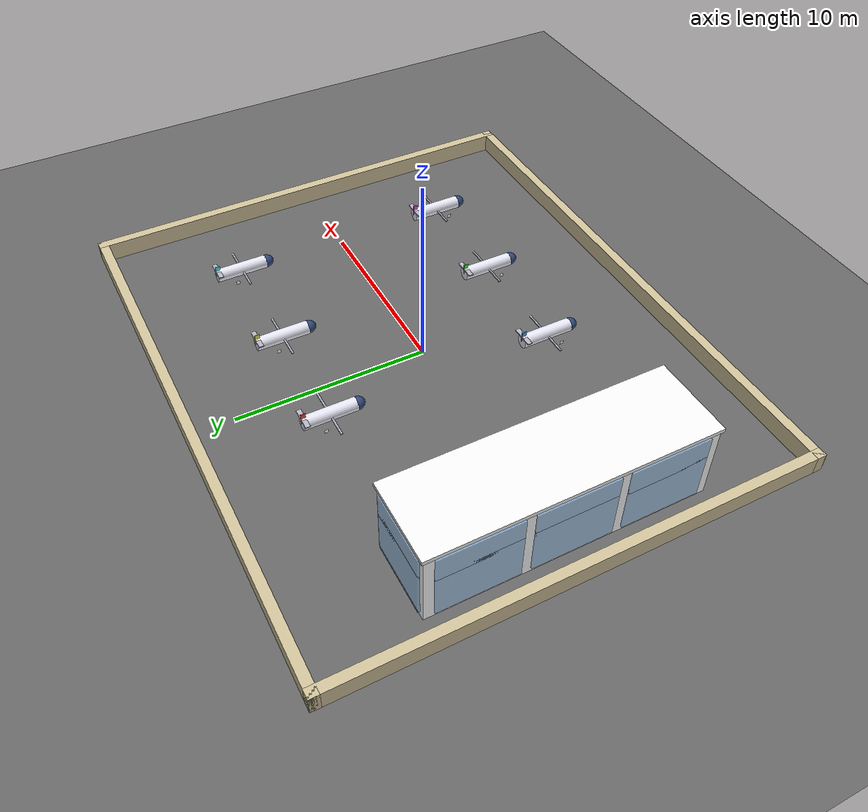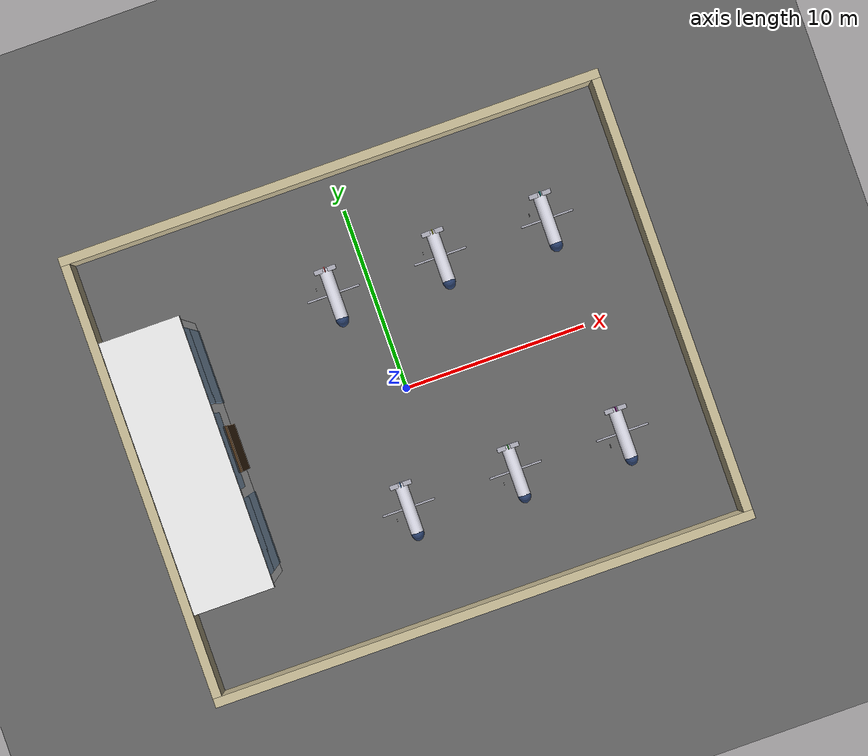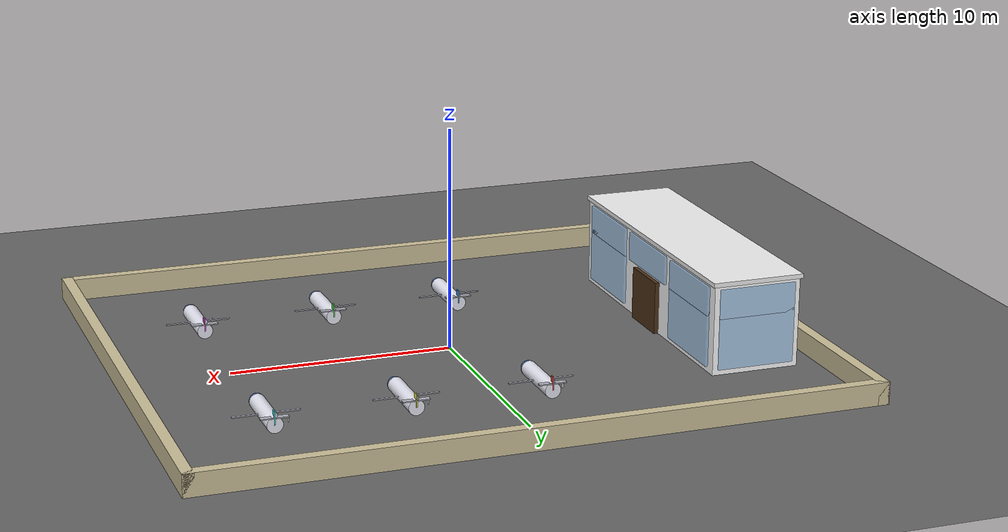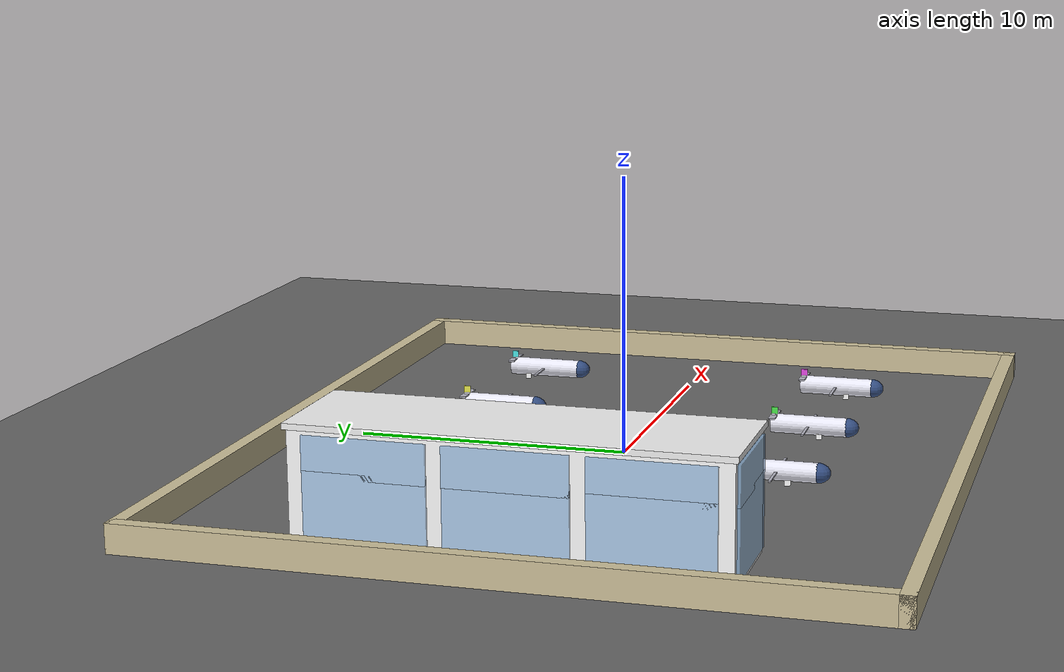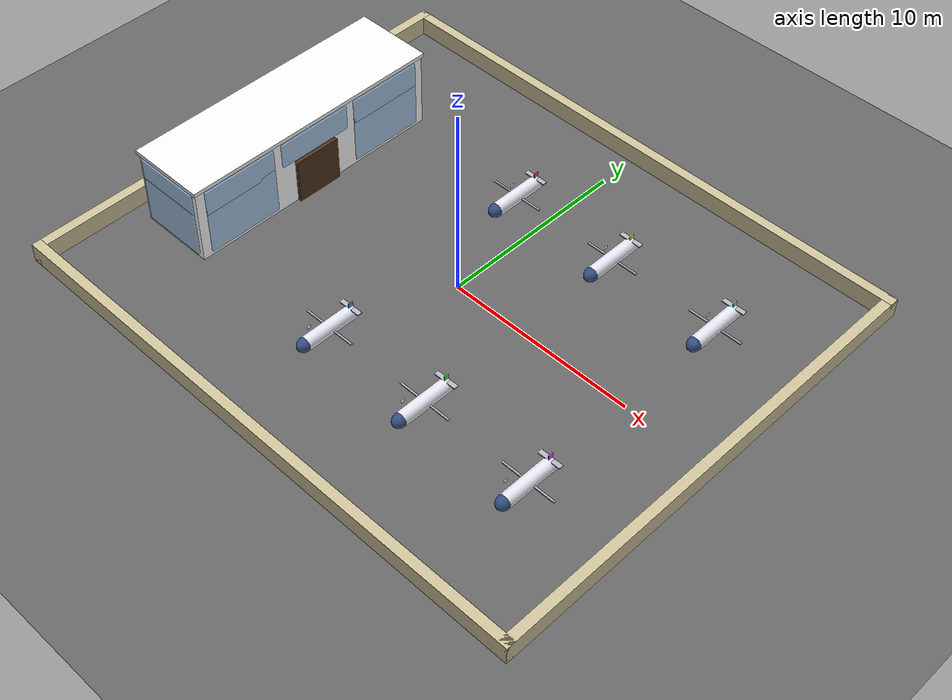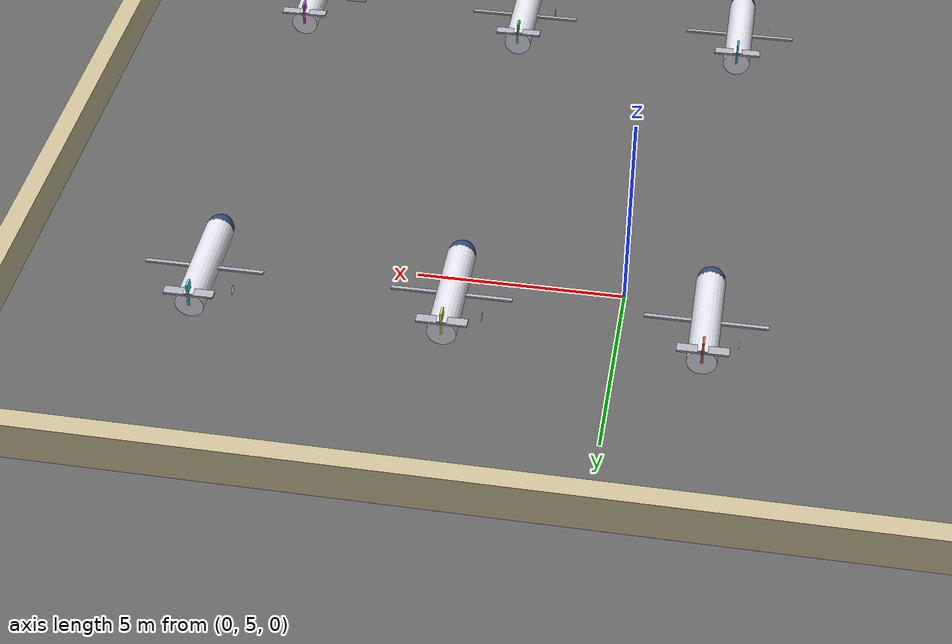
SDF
<sdf version="1.8">
 <world name="airport">
  <model name="ground_plane">
   <static>true</static>
   <link name="link">
    <collision name="collision">
     <geometry><plane><normal>0 0 1</normal><size>30 25</size></plane></geometry>
    </collision>
    <visual name="visual">
     <geometry><plane><normal>0 0 1</normal><size>30 25</size></plane></geometry>
     <material>
      <ambient>0.3 0.3 0.3 1</ambient>
      <diffuse>0.4 0.4 0.4 1</diffuse>
      <specular>0.01 0.01 0.01 1</specular>
     </material>
    </visual>
   </link>
  </model>
  <model name="airport_fence">
   <static>true</static>
   <link name="north_wall">
    <pose>0 12.25 0.5 0 0 0</pose>
    <collision name="collision"><geometry><box><size>30 0.5 1</size></box></geometry></collision>
    <visual name="visual">
     <geometry><box><size>30 0.5 1</size></box></geometry>
     <material>
      <ambient>0.8 0.75 0.6 1</ambient>
      <diffuse>0.8 0.75 0.6 1</diffuse>
      <specular>0.1 0.1 0.1 1</specular>
     </material>
    </visual>
   </link>
   <link name="south_wall">
    <pose>0 -12.25 0.5 0 0 0</pose>
    <collision name="collision"><geometry><box><size>30 0.5 1</size></box></geometry></collision>
    <visual name="visual">
     <geometry><box><size>30 0.5 1</size></box></geometry>
     <material>
      <ambient>0.8 0.75 0.6 1</ambient>
      <diffuse>0.8 0.75 0.6 1</diffuse>
      <specular>0.1 0.1 0.1 1</specular>
     </material>
    </visual>
   </link>
   <link name="east_wall">
    <pose>14.75 0 0.5 0 0 0</pose>
    <collision name="collision"><geometry><box><size>0.5 25 1</size></box></geometry></collision>
    <visual name="visual">
     <geometry><box><size>0.5 25 1</size></box></geometry>
     <material>
      <ambient>0.8 0.75 0.6 1</ambient>
      <diffuse>0.8 0.75 0.6 1</diffuse>
      <specular>0.1 0.1 0.1 1</specular>
     </material>
    </visual>
   </link>
   <link name="west_wall">
    <pose>-14.75 0 0.5 0 0 0</pose>
    <collision name="collision"><geometry><box><size>0.5 25 1</size></box></geometry></collision>
    <visual name="visual">
     <geometry><box><size>0.5 25 1</size></box></geometry>
     <material>
      <ambient>0.8 0.75 0.6 1</ambient>
      <diffuse>0.8 0.75 0.6 1</diffuse>
      <specular>0.1 0.1 0.1 1</specular>
     </material>
    </visual>
   </link>
  </model>
  <model name="terminal_building">
   <static>true</static>
   <pose>-10.5 0 0 0 0 0</pose>
   <link name="main_body">
    <pose>-1 0 2 0 0 0</pose>
    <collision name="collision"><geometry><box><size>4 14 4</size></box></geometry></collision>
    <visual name="visual">
     <geometry><box><size>4 14 4</size></box></geometry>
     <material><ambient>0.95 0.95 0.95 1</ambient><diffuse>1.0 1.0 1.0 1</diffuse></material>
    </visual>
   </link>
   <link name="roof">
    <pose>-1 0 4.1 0 0 0</pose>
    <visual name="visual">
     <geometry><box><size>4.2 14.2 0.2</size></box></geometry>
     <material><ambient>0.9 0.9 0.9 1</ambient><diffuse>0.95 0.95 0.95 1</diffuse></material>
    </visual>
   </link>
   <link name="entrance">
    <pose>1.1 0 1.2 0 0 0</pose>
    <visual name="visual">
     <geometry><box><size>0.2 2.5 2.4</size></box></geometry>
     <material><ambient>0.25 0.15 0.05 1</ambient><diffuse>0.3 0.2 0.1 1</diffuse></material>
    </visual>
   </link>
   <link name="window_front_1_left">
    <pose>1.05 -4.5 1.5 0 0 0</pose>
    <visual name="visual">
     <geometry><box><size>0.1 4 2.5</size></box></geometry>
     <material><ambient>0.4 0.6 0.85 0.5</ambient><diffuse>0.5 0.7 0.9 0.6</diffuse></material>
    </visual>
   </link>
   <link name="window_front_1_right">
    <pose>1.05 4.5 1.5 0 0 0</pose>
    <visual name="visual">
     <geometry><box><size>0.1 4 2.5</size></box></geometry>
     <material><ambient>0.4 0.6 0.85 0.5</ambient><diffuse>0.5 0.7 0.9 0.6</diffuse></material>
    </visual>
   </link>
   <link name="window_front_2_left">
    <pose>1.05 -4.5 3.2 0 0 0</pose>
    <visual name="visual">
     <geometry><box><size>0.1 4 1.3</size></box></geometry>
     <material><ambient>0.4 0.6 0.85 0.5</ambient><diffuse>0.5 0.7 0.9 0.6</diffuse></material>
    </visual>
   </link>
   <link name="window_front_2_central">
    <pose>1.05 -0.0 3.2 0 0 0</pose>
    <visual name="visual">
     <geometry><box><size>0.1 4 1.3</size></box></geometry>
     <material><ambient>0.4 0.6 0.85 0.5</ambient><diffuse>0.5 0.7 0.9 0.6</diffuse></material>
    </visual>
   </link>
   <link name="window_front_2_right">
    <pose>1.05 4.5 3.2 0 0 0</pose>
    <visual name="visual">
     <geometry><box><size>0.1 4 1.3</size></box></geometry>
     <material><ambient>0.4 0.6 0.85 0.5</ambient><diffuse>0.5 0.7 0.9 0.6</diffuse></material>
    </visual>
   </link>
   <link name="window_back_1_left">
    <pose>-3.05 -4.5 1.5 0 0 0</pose>
    <visual name="visual">
     <geometry><box><size>0.1 4 2.5</size></box></geometry>
     <material><ambient>0.4 0.6 0.85 0.5</ambient><diffuse>0.5 0.7 0.9 0.6</diffuse></material>
    </visual>
   </link>
   <link name="window_back_1_central">
    <pose>-3.05 -0.0 1.5 0 0 0</pose>
    <visual name="visual">
     <geometry><box><size>0.1 4 2.5</size></box></geometry>
     <material><ambient>0.4 0.6 0.85 0.5</ambient><diffuse>0.5 0.7 0.9 0.6</diffuse></material>
    </visual>
   </link>
   <link name="window_back_1_right">
    <pose>-3.05 4.5 1.5 0 0 0</pose>
    <visual name="visual">
     <geometry><box><size>0.1 4 2.5</size></box></geometry>
     <material><ambient>0.4 0.6 0.85 0.5</ambient><diffuse>0.5 0.7 0.9 0.6</diffuse></material>
    </visual>
   </link>
   <link name="window_back_2_left">
    <pose>-3.05 -4.5 3.2 0 0 0</pose>
    <visual name="visual">
     <geometry><box><size>0.1 4 1.3</size></box></geometry>
     <material><ambient>0.4 0.6 0.85 0.5</ambient><diffuse>0.5 0.7 0.9 0.6</diffuse></material>
    </visual>
   </link>
   <link name="window_back_2_central">
    <pose>-3.05 -0.0 3.2 0 0 0</pose>
    <visual name="visual">
     <geometry><box><size>0.1 4 1.3</size></box></geometry>
     <material><ambient>0.4 0.6 0.85 0.5</ambient><diffuse>0.5 0.7 0.9 0.6</diffuse></material>
    </visual>
   </link>
   <link name="window_back_2_right">
    <pose>-3.05 4.5 3.2 0 0 0</pose>
    <visual name="visual">
     <geometry><box><size>0.1 4 1.3</size></box></geometry>
     <material><ambient>0.4 0.6 0.85 0.5</ambient><diffuse>0.5 0.7 0.9 0.6</diffuse></material>
    </visual>
   </link>
   <link name="window_left_1">
    <pose>-1 -7.05 1.5 0 0 0</pose>
    <visual name="visual">
     <geometry><box><size>3.5 0.1 2.5</size></box></geometry>
     <material><ambient>0.4 0.6 0.85 0.5</ambient><diffuse>0.5 0.7 0.9 0.6</diffuse></material>
    </visual>
   </link>
   <link name="window_left_2">
    <pose>-1 -7.05 3.2 0 0 0</pose>
    <visual name="visual">
     <geometry><box><size>3.5 0.1 1.3</size></box></geometry>
     <material><ambient>0.4 0.6 0.85 0.5</ambient><diffuse>0.5 0.7 0.9 0.6</diffuse></material>
    </visual>
   </link>
   <link name="window_right_1">
    <pose>-1 7.05 1.5 0 0 0</pose>
    <visual name="visual">
     <geometry><box><size>3.5 0.1 2.5</size></box></geometry>
     <material><ambient>0.4 0.6 0.85 0.5</ambient><diffuse>0.5 0.7 0.9 0.6</diffuse></material>
    </visual>
   </link>
   <link name="window_right_2">
    <pose>-1 7.05 3.2 0 0 0</pose>
    <visual name="visual">
     <geometry><box><size>3.5 0.1 1.3</size></box></geometry>
     <material><ambient>0.4 0.6 0.85 0.5</ambient><diffuse>0.5 0.7 0.9 0.6</diffuse></material>
    </visual>
   </link>
  </model>
  <include>
   <uri>model://aruco_tag_1</uri>
   <name>aruco_tag_1</name>
   <pose>-2.8 -6.5 0.2 1.5708 0 -1.5708</pose>
   <static>true</static>
  </include>
  <include>
   <uri>model://aruco_tag_2</uri>
   <name>aruco_tag_2</name>
   <pose>-2.8 6.5 0.2 1.5708 0 -1.5708</pose>
   <static>true</static>
  </include>
  <include>
   <uri>model://aruco_tag_3</uri>
   <name>aruco_tag_3</name>
   <pose>3.2 -6.5 0.2 1.5708 0 -1.5708</pose>
   <static>true</static>
  </include>
  <include>
   <uri>model://aruco_tag_4</uri>
   <name>aruco_tag_4</name>
   <pose>3.2 6.5 0.2 1.5708 0 -1.5708</pose>
   <static>true</static>
  </include>
  <include>
   <uri>model://aruco_tag_5</uri>
   <name>aruco_tag_5</name>
   <pose>9.2 -6.5 0.2 1.5708 0 -1.5708</pose>
   <static>true</static>
  </include>
  <include>
   <uri>model://aruco_tag_6</uri>
   <name>aruco_tag_6</name>
   <pose>9.2 6.5 0.2 1.5708 0 -1.5708</pose>
   <static>true</static>
  </include>
  <model name="aereo_1">
   <static>true</static>
   <pose>-2 -6 0.4 0 0 0</pose>
   <link name="collision_box">
    <collision name="collision"><geometry><box><size>1.5 3.5 0.8</size></box></geometry></collision>
   </link>
   <link name="fuselage">
    <pose>0 0 0 1.5708 0 0</pose>
    <visual name="visual">
     <geometry><cylinder><radius>0.35</radius><length>2.8</length></cylinder></geometry>
     <material><ambient>0.85 0.85 0.9 1</ambient><diffuse>0.9 0.9 0.95 1</diffuse></material>
    </visual>
   </link>
   <link name="wing_left">
    <pose>-0.8 0 0 0 0 0</pose>
    <visual name="visual">
     <geometry><box><size>1.3 0.1 0.05</size></box></geometry>
     <material><ambient>0.65 0.65 0.7 1</ambient><diffuse>0.7 0.7 0.75 1</diffuse></material>
    </visual>
   </link>
   <link name="wing_right">
    <pose>0.8 0 0 0 0 0</pose>
    <visual name="visual">
     <geometry><box><size>1.3 0.1 0.05</size></box></geometry>
     <material><ambient>0.65 0.65 0.7 1</ambient><diffuse>0.7 0.7 0.75 1</diffuse></material>
    </visual>
   </link>
   <link name="vertical_stabilizer">
    <pose>0 1.3 0.3 0 0 0</pose>
    <visual name="visual">
     <geometry><box><size>0.05 0.25 0.6</size></box></geometry>
     <material><ambient>0.2 0.5 0.8 1</ambient><diffuse>0.3 0.6 0.9 1</diffuse></material>
    </visual>
   </link>
   <link name="horizontal_stabilizer_left">
    <pose>-0.3 1.3 0.3 0 0 0</pose>
    <visual name="visual">
     <geometry><box><size>0.6 0.25 0.05</size></box></geometry>
     <material><ambient>0.65 0.65 0.7 1</ambient><diffuse>0.7 0.7 0.75 1</diffuse></material>
    </visual>
   </link>
   <link name="horizontal_stabilizer_right">
    <pose>0.3 1.3 0.3 0 0 0</pose>
    <visual name="visual">
     <geometry><box><size>0.6 0.25 0.05</size></box></geometry>
     <material><ambient>0.65 0.65 0.7 1</ambient><diffuse>0.7 0.7 0.75 1</diffuse></material>
    </visual>
   </link>
   <link name="cockpit">
    <pose>0 -1.4 0 0 0 0</pose>
    <visual name="visual">
     <geometry><ellipsoid><radii>0.35 0.45 0.35</radii></ellipsoid></geometry>
     <material><ambient>0.1 0.2 0.4 0.8</ambient><diffuse>0.2 0.3 0.5 0.9</diffuse></material>
    </visual>
   </link>
  </model>
  <model name="aereo_2">
   <static>true</static>
   <pose>-2 6 0.4 0 0 0</pose>
   <link name="collision_box">
    <collision name="collision"><geometry><box><size>1.5 3.5 0.8</size></box></geometry></collision>
   </link>
   <link name="fuselage">
    <pose>0 0 0 1.5708 0 0</pose>
    <visual name="visual">
     <geometry><cylinder><radius>0.35</radius><length>2.8</length></cylinder></geometry>
     <material><ambient>0.85 0.85 0.9 1</ambient><diffuse>0.9 0.9 0.95 1</diffuse></material>
    </visual>
   </link>
   <link name="wing_left">
    <pose>-0.8 0 0 0 0 0</pose>
    <visual name="visual">
     <geometry><box><size>1.3 0.1 0.05</size></box></geometry>
     <material><ambient>0.65 0.65 0.7 1</ambient><diffuse>0.7 0.7 0.75 1</diffuse></material>
    </visual>
   </link>
   <link name="wing_right">
    <pose>0.8 0 0 0 0 0</pose>
    <visual name="visual">
     <geometry><box><size>1.3 0.1 0.05</size></box></geometry>
     <material><ambient>0.65 0.65 0.7 1</ambient><diffuse>0.7 0.7 0.75 1</diffuse></material>
    </visual>
   </link>
   <link name="vertical_stabilizer">
    <pose>0 1.3 0.3 0 0 0</pose>
    <visual name="visual">
     <geometry><box><size>0.05 0.25 0.6</size></box></geometry>
     <material><ambient>0.8 0.2 0.2 1</ambient><diffuse>0.9 0.3 0.3 1</diffuse></material>
    </visual>
   </link>
   <link name="horizontal_stabilizer_left">
    <pose>-0.3 1.3 0.3 0 0 0</pose>
    <visual name="visual">
     <geometry><box><size>0.6 0.25 0.05</size></box></geometry>
     <material><ambient>0.65 0.65 0.7 1</ambient><diffuse>0.7 0.7 0.75 1</diffuse></material>
    </visual>
   </link>
   <link name="horizontal_stabilizer_right">
    <pose>0.3 1.3 0.3 0 0 0</pose>
    <visual name="visual">
     <geometry><box><size>0.6 0.25 0.05</size></box></geometry>
     <material><ambient>0.65 0.65 0.7 1</ambient><diffuse>0.7 0.7 0.75 1</diffuse></material>
    </visual>
   </link>
   <link name="cockpit">
    <pose>0 -1.4 0 0 0 0</pose>
    <visual name="visual">
     <geometry><ellipsoid><radii>0.35 0.45 0.35</radii></ellipsoid></geometry>
     <material><ambient>0.1 0.2 0.4 0.8</ambient><diffuse>0.2 0.3 0.5 0.9</diffuse></material>
    </visual>
   </link>
  </model>
  <model name="aereo_3">
   <static>true</static>
   <pose>4 6 0.4 0 0 0</pose>
   <link name="collision_box">
    <collision name="collision"><geometry><box><size>1.5 3.5 0.8</size></box></geometry></collision>
   </link>
   <link name="fuselage">
    <pose>0 0 0 1.5708 0 0</pose>
    <visual name="visual">
     <geometry><cylinder><radius>0.35</radius><length>2.8</length></cylinder></geometry>
     <material><ambient>0.85 0.85 0.9 1</ambient><diffuse>0.9 0.9 0.95 1</diffuse></material>
    </visual>
   </link>
   <link name="wing_left">
    <pose>-0.8 0 0 0 0 0</pose>
    <visual name="visual">
     <geometry><box><size>1.3 0.1 0.05</size></box></geometry>
     <material><ambient>0.65 0.65 0.7 1</ambient><diffuse>0.7 0.7 0.75 1</diffuse></material>
    </visual>
   </link>
   <link name="wing_right">
    <pose>0.8 0 0 0 0 0</pose>
    <visual name="visual">
     <geometry><box><size>1.3 0.1 0.05</size></box></geometry>
     <material><ambient>0.65 0.65 0.7 1</ambient><diffuse>0.7 0.7 0.75 1</diffuse></material>
    </visual>
   </link>
   <link name="vertical_stabilizer">
    <pose>0 1.3 0.3 0 0 0</pose>
    <visual name="visual">
     <geometry><box><size>0.05 0.25 0.6</size></box></geometry>
     <material><ambient>0.8 0.8 0.2 1</ambient><diffuse>0.9 0.9 0.3 1</diffuse></material>
    </visual>
   </link>
   <link name="horizontal_stabilizer_left">
    <pose>-0.3 1.3 0.3 0 0 0</pose>
    <visual name="visual">
     <geometry><box><size>0.6 0.25 0.05</size></box></geometry>
     <material><ambient>0.65 0.65 0.7 1</ambient><diffuse>0.7 0.7 0.75 1</diffuse></material>
    </visual>
   </link>
   <link name="horizontal_stabilizer_right">
    <pose>0.3 1.3 0.3 0 0 0</pose>
    <visual name="visual">
     <geometry><box><size>0.6 0.25 0.05</size></box></geometry>
     <material><ambient>0.65 0.65 0.7 1</ambient><diffuse>0.7 0.7 0.75 1</diffuse></material>
    </visual>
   </link>
   <link name="cockpit">
    <pose>0 -1.4 0 0 0 0</pose>
    <visual name="visual">
     <geometry><ellipsoid><radii>0.35 0.45 0.35</radii></ellipsoid></geometry>
     <material><ambient>0.1 0.2 0.4 0.8</ambient><diffuse>0.2 0.3 0.5 0.9</diffuse></material>
    </visual>
   </link>
  </model>
  <model name="aereo_4">
   <static>true</static>
   <pose>4 -6 0.4 0 0 0</pose>
   <link name="collision_box">
    <collision name="collision"><geometry><box><size>1.5 3.5 0.8</size></box></geometry></collision>
   </link>
   <link name="fuselage">
    <pose>0 0 0 1.5708 0 0</pose>
    <visual name="visual">
     <geometry><cylinder><radius>0.35</radius><length>2.8</length></cylinder></geometry>
     <material><ambient>0.85 0.85 0.9 1</ambient><diffuse>0.9 0.9 0.95 1</diffuse></material>
    </visual>
   </link>
   <link name="wing_left">
    <pose>-0.8 0 0 0 0 0</pose>
    <visual name="visual">
     <geometry><box><size>1.3 0.1 0.05</size></box></geometry>
     <material><ambient>0.65 0.65 0.7 1</ambient><diffuse>0.7 0.7 0.75 1</diffuse></material>
    </visual>
   </link>
   <link name="wing_right">
    <pose>0.8 0 0 0 0 0</pose>
    <visual name="visual">
     <geometry><box><size>1.3 0.1 0.05</size></box></geometry>
     <material><ambient>0.65 0.65 0.7 1</ambient><diffuse>0.7 0.7 0.75 1</diffuse></material>
    </visual>
   </link>
   <link name="vertical_stabilizer">
    <pose>0 1.3 0.3 0 0 0</pose>
    <visual name="visual">
     <geometry><box><size>0.05 0.25 0.6</size></box></geometry>
     <material><ambient>0.2 0.8 0.2 1</ambient><diffuse>0.3 0.9 0.3 1</diffuse></material>
    </visual>
   </link>
   <link name="horizontal_stabilizer_left">
    <pose>-0.3 1.3 0.3 0 0 0</pose>
    <visual name="visual">
     <geometry><box><size>0.6 0.25 0.05</size></box></geometry>
     <material><ambient>0.65 0.65 0.7 1</ambient><diffuse>0.7 0.7 0.75 1</diffuse></material>
    </visual>
   </link>
   <link name="horizontal_stabilizer_right">
    <pose>0.3 1.3 0.3 0 0 0</pose>
    <visual name="visual">
     <geometry><box><size>0.6 0.25 0.05</size></box></geometry>
     <material><ambient>0.65 0.65 0.7 1</ambient><diffuse>0.7 0.7 0.75 1</diffuse></material>
    </visual>
   </link>
   <link name="cockpit">
    <pose>0 -1.4 0 0 0 0</pose>
    <visual name="visual">
     <geometry><ellipsoid><radii>0.35 0.45 0.35</radii></ellipsoid></geometry>
     <material><ambient>0.1 0.2 0.4 0.8</ambient><diffuse>0.2 0.3 0.5 0.9</diffuse></material>
    </visual>
   </link>
  </model>
  <model name="aereo_5">
   <static>true</static>
   <pose>10 -6 0.4 0 0 0</pose>
   <link name="collision_box">
    <collision name="collision"><geometry><box><size>1.5 3.5 0.8</size></box></geometry></collision>
   </link>
   <link name="fuselage">
    <pose>0 0 0 1.5708 0 0</pose>
    <visual name="visual">
     <geometry><cylinder><radius>0.35</radius><length>2.8</length></cylinder></geometry>
     <material><ambient>0.85 0.85 0.9 1</ambient><diffuse>0.9 0.9 0.95 1</diffuse></material>
    </visual>
   </link>
   <link name="wing_left">
    <pose>-0.8 0 0 0 0 0</pose>
    <visual name="visual">
     <geometry><box><size>1.3 0.1 0.05</size></box></geometry>
     <material><ambient>0.65 0.65 0.7 1</ambient><diffuse>0.7 0.7 0.75 1</diffuse></material>
    </visual>
   </link>
   <link name="wing_right">
    <pose>0.8 0 0 0 0 0</pose>
    <visual name="visual">
     <geometry><box><size>1.3 0.1 0.05</size></box></geometry>
     <material><ambient>0.65 0.65 0.7 1</ambient><diffuse>0.7 0.7 0.75 1</diffuse></material>
    </visual>
   </link>
   <link name="vertical_stabilizer">
    <pose>0 1.3 0.3 0 0 0</pose>
    <visual name="visual">
     <geometry><box><size>0.05 0.25 0.6</size></box></geometry>
     <material><ambient>0.8 0.2 0.8 1</ambient><diffuse>0.9 0.3 0.9 1</diffuse></material>
    </visual>
   </link>
   <link name="horizontal_stabilizer_left">
    <pose>-0.3 1.3 0.3 0 0 0</pose>
    <visual name="visual">
     <geometry><box><size>0.6 0.25 0.05</size></box></geometry>
     <material><ambient>0.65 0.65 0.7 1</ambient><diffuse>0.7 0.7 0.75 1</diffuse></material>
    </visual>
   </link>
   <link name="horizontal_stabilizer_right">
    <pose>0.3 1.3 0.3 0 0 0</pose>
    <visual name="visual">
     <geometry><box><size>0.6 0.25 0.05</size></box></geometry>
     <material><ambient>0.65 0.65 0.7 1</ambient><diffuse>0.7 0.7 0.75 1</diffuse></material>
    </visual>
   </link>
   <link name="cockpit">
    <pose>0 -1.4 0 0 0 0</pose>
    <visual name="visual">
     <geometry><ellipsoid><radii>0.35 0.45 0.35</radii></ellipsoid></geometry>
     <material><ambient>0.1 0.2 0.4 0.8</ambient><diffuse>0.2 0.3 0.5 0.9</diffuse></material>
    </visual>
   </link>
  </model>
  <model name="aereo_6">
   <static>true</static>
   <pose>10 6 0.4 0 0 0</pose>
   <link name="collision_box">
    <collision name="collision"><geometry><box><size>1.5 3.5 0.8</size></box></geometry></collision>
   </link>
   <link name="fuselage">
    <pose>0 0 0 1.5708 0 0</pose>
    <visual name="visual">
     <geometry><cylinder><radius>0.35</radius><length>2.8</length></cylinder></geometry>
     <material><ambient>0.85 0.85 0.9 1</ambient><diffuse>0.9 0.9 0.95 1</diffuse></material>
    </visual>
   </link>
   <link name="wing_left">
    <pose>-0.8 0 0 0 0 0</pose>
    <visual name="visual">
     <geometry><box><size>1.3 0.1 0.05</size></box></geometry>
     <material><ambient>0.65 0.65 0.7 1</ambient><diffuse>0.7 0.7 0.75 1</diffuse></material>
    </visual>
   </link>
   <link name="wing_right">
    <pose>0.8 0 0 0 0 0</pose>
    <visual name="visual">
     <geometry><box><size>1.3 0.1 0.05</size></box></geometry>
     <material><ambient>0.65 0.65 0.7 1</ambient><diffuse>0.7 0.7 0.75 1</diffuse></material>
    </visual>
   </link>
   <link name="vertical_stabilizer">
    <pose>0 1.3 0.3 0 0 0</pose>
    <visual name="visual">
     <geometry><box><size>0.05 0.25 0.6</size></box></geometry>
     <material><ambient>0.2 0.8 0.8 1</ambient><diffuse>0.3 0.9 0.9 1</diffuse></material>
    </visual>
   </link>
   <link name="horizontal_stabilizer_left">
    <pose>-0.3 1.3 0.3 0 0 0</pose>
    <visual name="visual">
     <geometry><box><size>0.6 0.25 0.05</size></box></geometry>
     <material><ambient>0.65 0.65 0.7 1</ambient><diffuse>0.7 0.7 0.75 1</diffuse></material>
    </visual>
   </link>
   <link name="horizontal_stabilizer_right">
    <pose>0.3 1.3 0.3 0 0 0</pose>
    <visual name="visual">
     <geometry><box><size>0.6 0.25 0.05</size></box></geometry>
     <material><ambient>0.65 0.65 0.7 1</ambient><diffuse>0.7 0.7 0.75 1</diffuse></material>
    </visual>
   </link>
   <link name="cockpit">
    <pose>0 -1.4 0 0 0 0</pose>
    <visual name="visual">
     <geometry><ellipsoid><radii>0.35 0.45 0.35</radii></ellipsoid></geometry>
     <material><ambient>0.1 0.2 0.4 0.8</ambient><diffuse>0.2 0.3 0.5 0.9</diffuse></material>
    </visual>
   </link>
  </model>
 </world>
</sdf>
